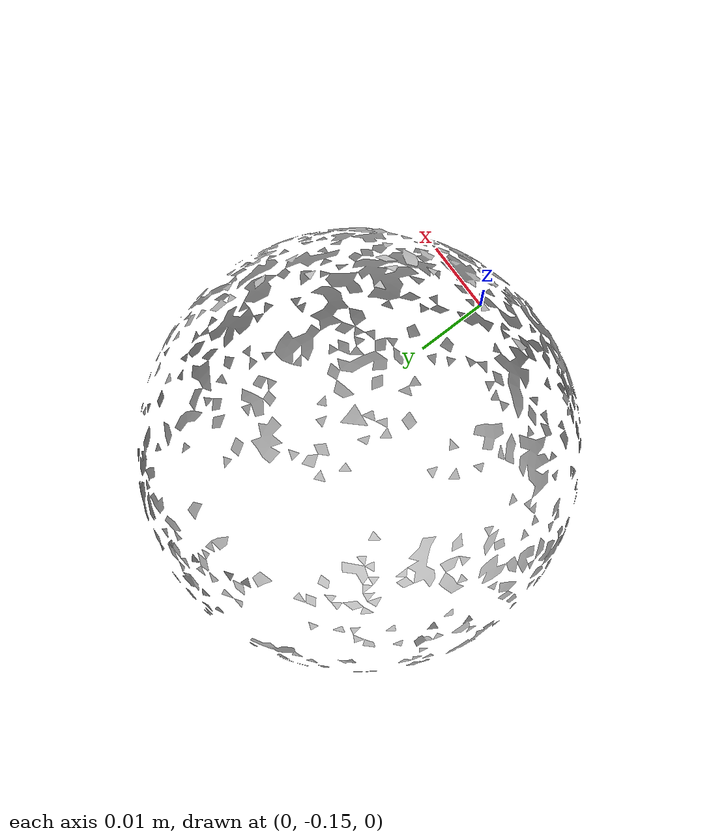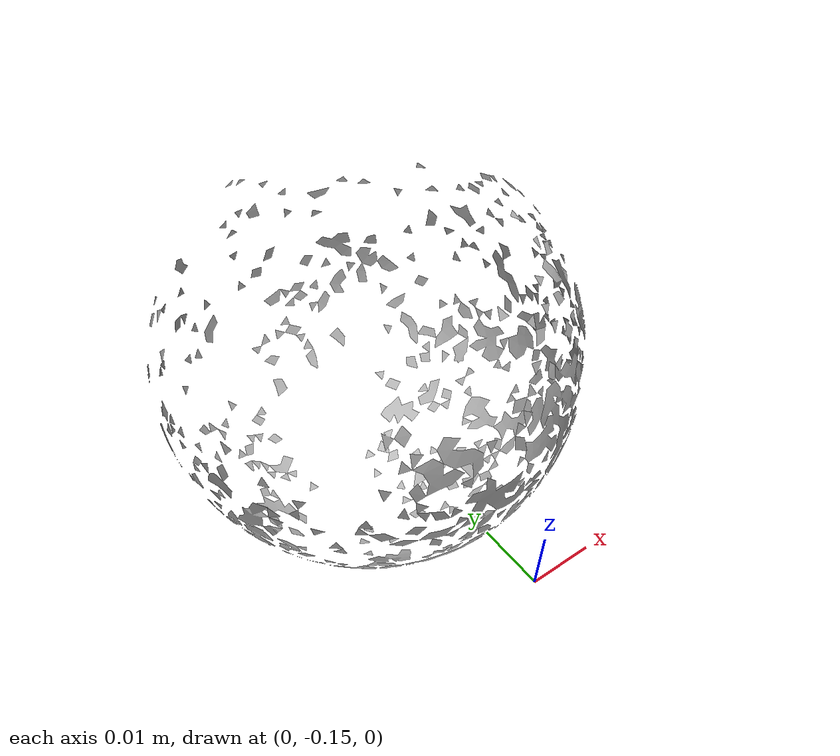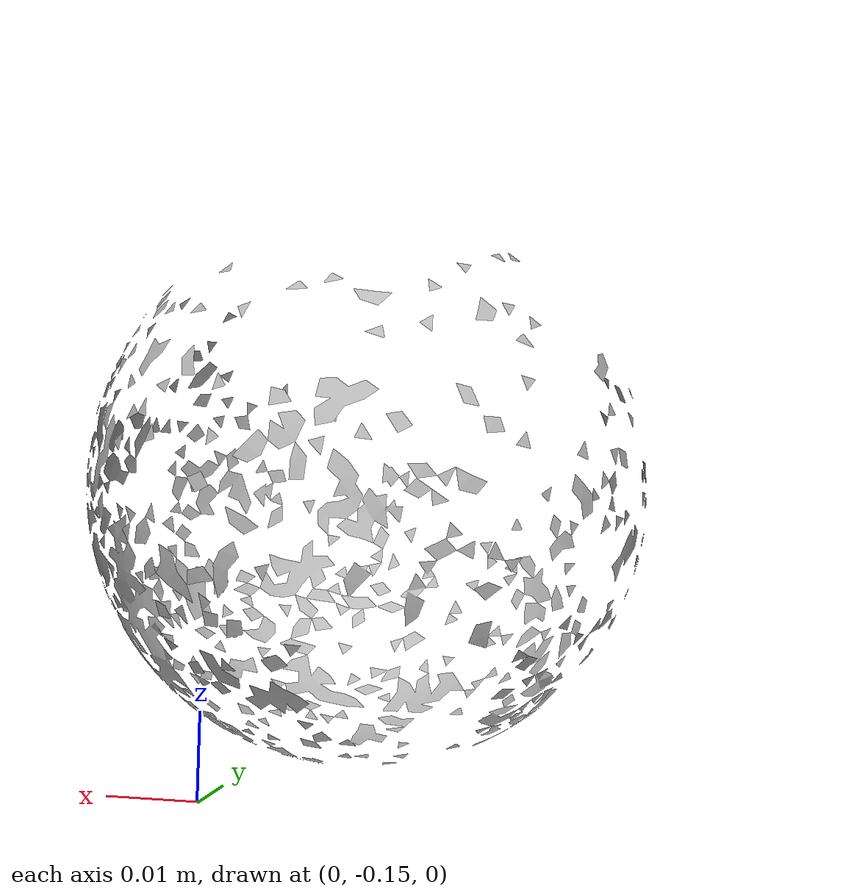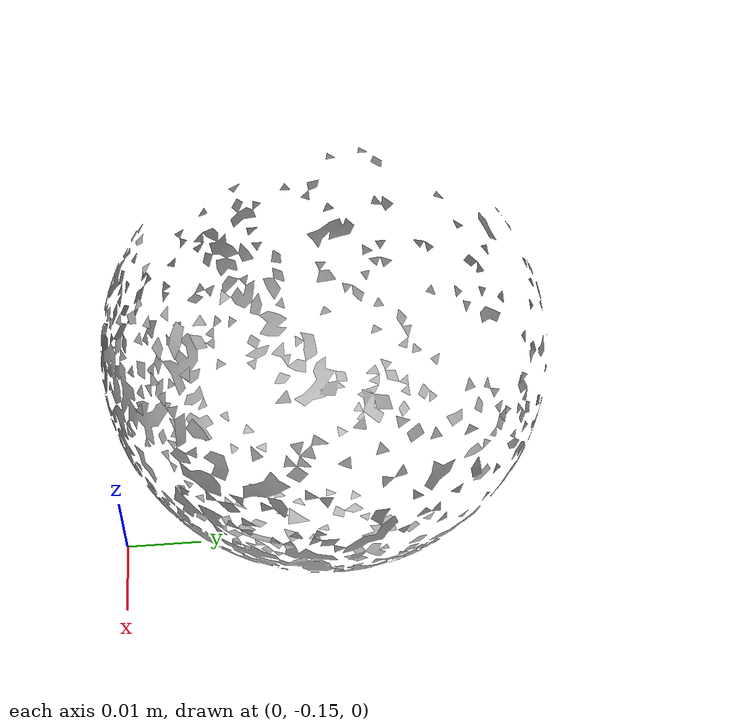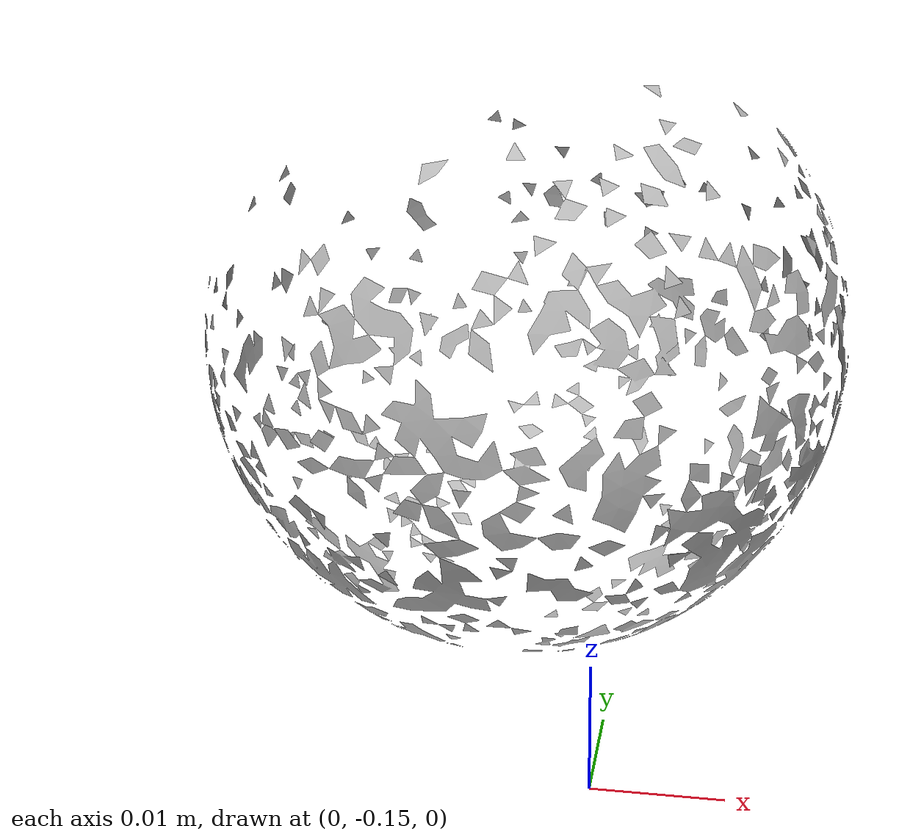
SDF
<?xml version="1.0" ?>
<sdf version="1.4">
  <model name='ycb_057_racquetball'>
    <link name='body'>
      <inertial>
        <mass>0.041</mass>
        <pose>-0.00907104476839 -0.122216499414 0.0275711383514 0 0 0</pose>
        <inertia>
          <ixx>1.27988245512e-05</ixx>
          <ixy>1.11180517107e-08</ixy>
          <ixz>-2.81012085612e-10</ixz>
          <iyy>1.27229343984e-05</iyy>
          <iyz>-1.99045965187e-08</iyz>
          <izz>1.28026037026e-05</izz>
        </inertia>
      </inertial>
      <visual name='ycb_057_racquetball_visual'>
        <pose>0 0 0 0 0 0</pose>
        <geometry>
          <mesh>
            <uri>model://ycb_057_racquetball/meshes/textured.dae</uri>
          </mesh>
        </geometry>
      </visual>
      <collision name='ycb_057_racquetball_collision'>
        <pose>0 0 0 0 0 0</pose>
        <geometry>
          <mesh>
            <uri>model://ycb_057_racquetball/meshes/nontextured.stl</uri>
          </mesh>
        </geometry>
        <max_contacts>10</max_contacts>
      </collision>
    </link>
  </model>
</sdf>
